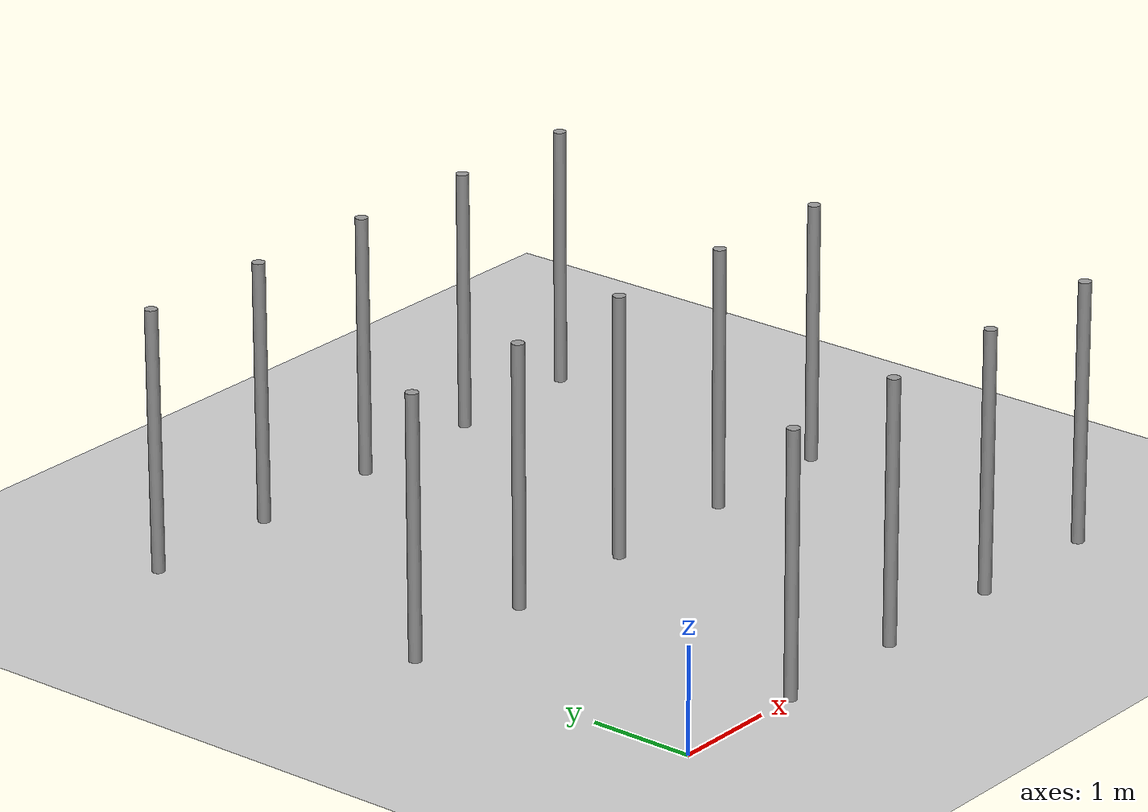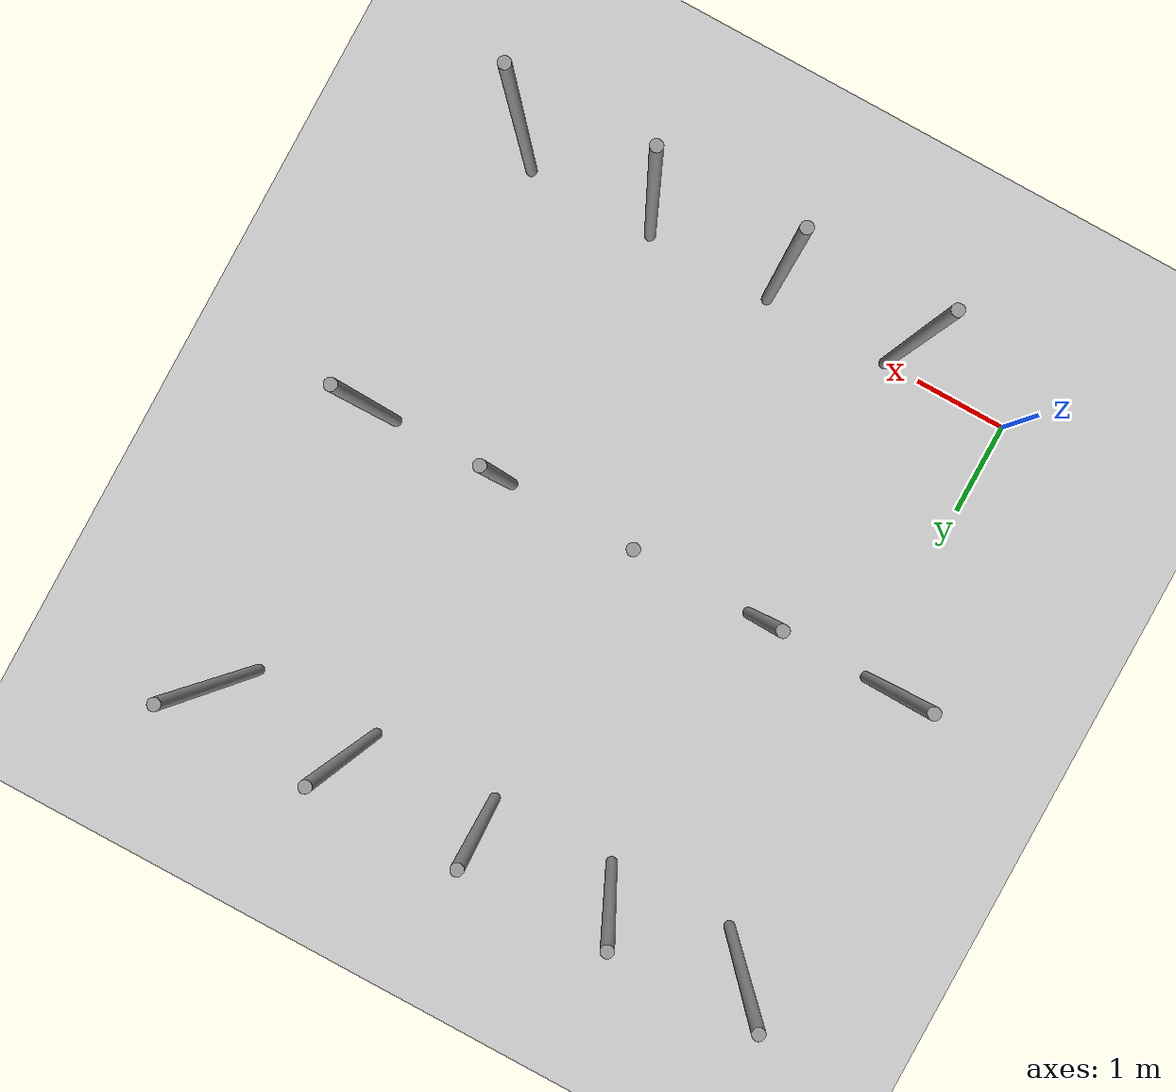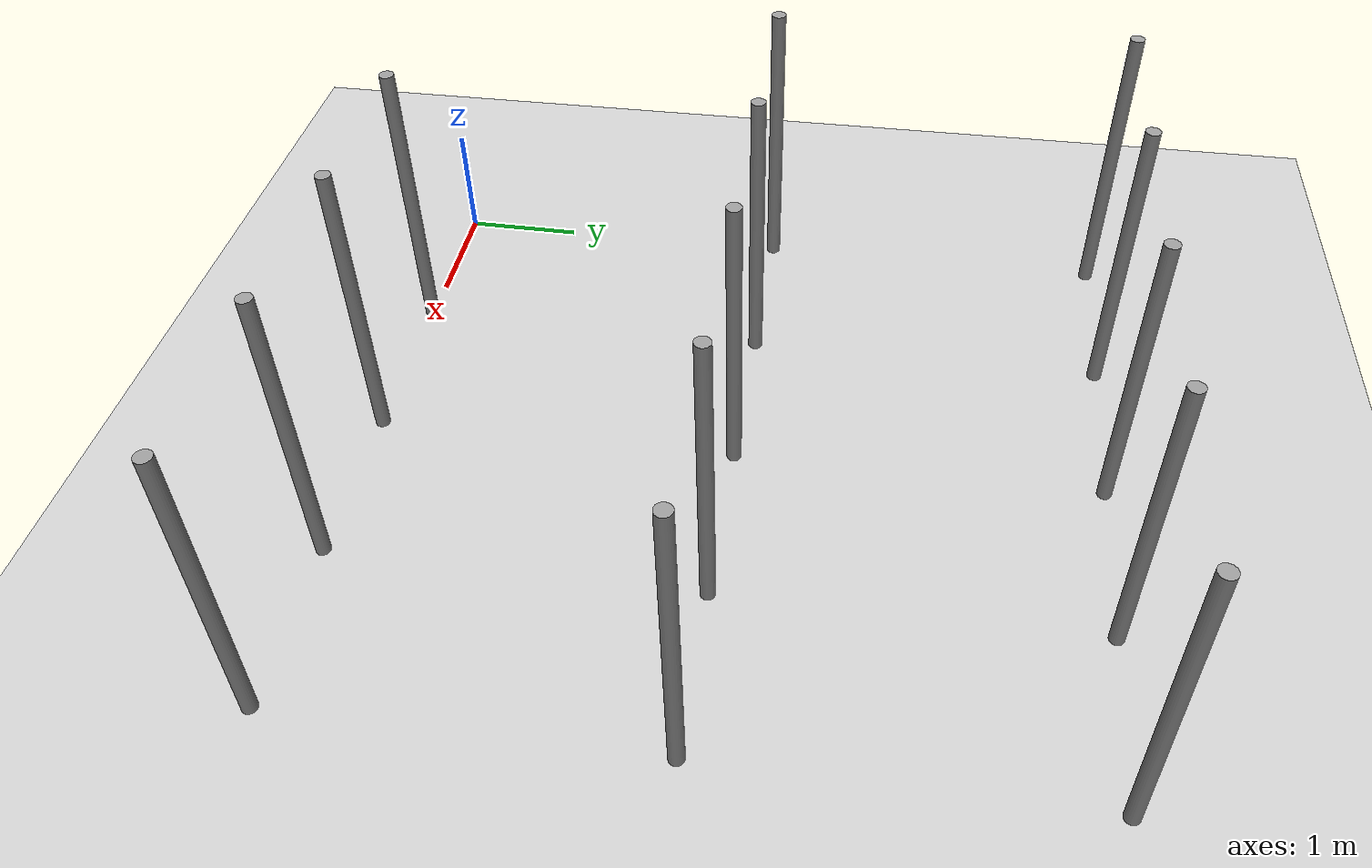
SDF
<sdf version="1.6">
 <world name="default">
  <model name="ground_plane">
   <static>1</static>
   <link name="link">
    <collision name="collision">
     <geometry><plane><normal>0 0 1</normal><size>100 100</size></plane></geometry>
     <surface><friction><ode><mu>100</mu><mu2>50</mu2></ode></friction></surface>
    </collision>
    <visual name="visual">
     <cast_shadows>0</cast_shadows>
     <geometry><plane><normal>0 0 1</normal><size>100 100</size></plane></geometry>
     <material>
      <script><uri>file://media/materials/scripts/gazebo.material</uri><name>Gazebo/Grey</name></script>
     </material>
    </visual>
   </link>
  </model>
  <model name="pole_8">
   <link name="link_0">
    <inertial>
     <mass>0.0364582</mass>
     <inertia>
      <ixx>0.00312124</ixx>
      <ixy>0</ixy>
      <ixz>0</ixz>
      <iyy>0.00312124</iyy>
      <iyz>0</iyz>
      <izz>0.00016615</izz>
     </inertia>
    </inertial>
    <visual name="visual">
     <geometry><cylinder><radius>0.06</radius><length>2.5</length></cylinder></geometry>
     <material>
      <lighting>1</lighting>
      <script><uri>file://media/materials/scripts/gazebo.material</uri><name>Gazebo/Grey</name></script>
      <ambient>0.3 0.3 0.3 1</ambient>
      <diffuse>0.7 0.7 0.7 1</diffuse>
      <specular>0.01 0.01 0.01 1</specular>
      <emissive>0 0 0 1</emissive>
      <shader type="vertex"><normal_map>__default__</normal_map></shader>
     </material>
    </visual>
    <collision name="collision">
     <geometry><cylinder><radius>0.06</radius><length>2.5</length></cylinder></geometry>
     <surface>
      <friction>
       <ode><mu>1</mu><mu2>1</mu2><fdir1>0 0 0</fdir1><slip1>0</slip1><slip2>0</slip2></ode>
       <torsional>
        <coefficient>1</coefficient>
        <patch_radius>0</patch_radius>
        <surface_radius>0</surface_radius>
        <use_patch_radius>1</use_patch_radius>
        <ode><slip>0</slip></ode>
       </torsional>
      </friction>
      <bounce><restitution_coefficient>0</restitution_coefficient><threshold>1e+06</threshold></bounce>
      <contact>
       <collide_without_contact>0</collide_without_contact>
       <collide_without_contact_bitmask>1</collide_without_contact_bitmask>
       <collide_bitmask>1</collide_bitmask>
       <ode>
        <soft_cfm>0</soft_cfm>
        <soft_erp>0.2</soft_erp>
        <kp>1e+13</kp>
        <kd>1</kd>
        <max_vel>0.01</max_vel>
        <min_depth>0</min_depth>
       </ode>
       <bullet>
        <split_impulse>1</split_impulse>
        <split_impulse_penetration_threshold>-0.01</split_impulse_penetration_threshold>
        <soft_cfm>0</soft_cfm>
        <soft_erp>0.2</soft_erp>
        <kp>1e+13</kp>
        <kd>1</kd>
       </bullet>
      </contact>
     </surface>
    </collision>
   </link>
   <static>0</static>
   <pose>1.40417 0.001158 1.24999 0 -1e-06 -0.014934</pose>
  </model>
  <model name="pole_9">
   <link name="link_0">
    <inertial>
     <mass>0.0364582</mass>
     <inertia>
      <ixx>0.00312124</ixx>
      <ixy>0</ixy>
      <ixz>0</ixz>
      <iyy>0.00312124</iyy>
      <iyz>0</iyz>
      <izz>0.00016615</izz>
     </inertia>
    </inertial>
    <visual name="visual">
     <geometry><cylinder><radius>0.06</radius><length>2.5</length></cylinder></geometry>
     <material>
      <lighting>1</lighting>
      <script><uri>file://media/materials/scripts/gazebo.material</uri><name>Gazebo/Grey</name></script>
      <ambient>0.3 0.3 0.3 1</ambient>
      <diffuse>0.7 0.7 0.7 1</diffuse>
      <specular>0.01 0.01 0.01 1</specular>
      <emissive>0 0 0 1</emissive>
      <shader type="vertex"><normal_map>__default__</normal_map></shader>
     </material>
    </visual>
    <collision name="collision">
     <geometry><cylinder><radius>0.06</radius><length>2.5</length></cylinder></geometry>
     <surface>
      <friction>
       <ode><mu>1</mu><mu2>1</mu2><fdir1>0 0 0</fdir1><slip1>0</slip1><slip2>0</slip2></ode>
       <torsional>
        <coefficient>1</coefficient>
        <patch_radius>0</patch_radius>
        <surface_radius>0</surface_radius>
        <use_patch_radius>1</use_patch_radius>
        <ode><slip>0</slip></ode>
       </torsional>
      </friction>
      <bounce><restitution_coefficient>0</restitution_coefficient><threshold>1e+06</threshold></bounce>
      <contact>
       <collide_without_contact>0</collide_without_contact>
       <collide_without_contact_bitmask>1</collide_without_contact_bitmask>
       <collide_bitmask>1</collide_bitmask>
       <ode>
        <soft_cfm>0</soft_cfm>
        <soft_erp>0.2</soft_erp>
        <kp>1e+13</kp>
        <kd>1</kd>
        <max_vel>0.01</max_vel>
        <min_depth>0</min_depth>
       </ode>
       <bullet>
        <split_impulse>1</split_impulse>
        <split_impulse_penetration_threshold>-0.01</split_impulse_penetration_threshold>
        <soft_cfm>0</soft_cfm>
        <soft_erp>0.2</soft_erp>
        <kp>1e+13</kp>
        <kd>1</kd>
       </bullet>
      </contact>
     </surface>
    </collision>
   </link>
   <static>0</static>
   <pose>2.80799 0.00138 1.25 -1e-06 1e-06 -0.03404</pose>
  </model>
  <model name="pole_10">
   <link name="link_0">
    <inertial>
     <mass>0.0364582</mass>
     <inertia>
      <ixx>0.00312124</ixx>
      <ixy>0</ixy>
      <ixz>0</ixz>
      <iyy>0.00312124</iyy>
      <iyz>0</iyz>
      <izz>0.00016615</izz>
     </inertia>
    </inertial>
    <visual name="visual">
     <geometry><cylinder><radius>0.06</radius><length>2.5</length></cylinder></geometry>
     <material>
      <lighting>1</lighting>
      <script><uri>file://media/materials/scripts/gazebo.material</uri><name>Gazebo/Grey</name></script>
      <ambient>0.3 0.3 0.3 1</ambient>
      <diffuse>0.7 0.7 0.7 1</diffuse>
      <specular>0.01 0.01 0.01 1</specular>
      <emissive>0 0 0 1</emissive>
      <shader type="vertex"><normal_map>__default__</normal_map></shader>
     </material>
    </visual>
    <collision name="collision">
     <geometry><cylinder><radius>0.06</radius><length>2.5</length></cylinder></geometry>
     <surface>
      <friction>
       <ode><mu>1</mu><mu2>1</mu2><fdir1>0 0 0</fdir1><slip1>0</slip1><slip2>0</slip2></ode>
       <torsional>
        <coefficient>1</coefficient>
        <patch_radius>0</patch_radius>
        <surface_radius>0</surface_radius>
        <use_patch_radius>1</use_patch_radius>
        <ode><slip>0</slip></ode>
       </torsional>
      </friction>
      <bounce><restitution_coefficient>0</restitution_coefficient><threshold>1e+06</threshold></bounce>
      <contact>
       <collide_without_contact>0</collide_without_contact>
       <collide_without_contact_bitmask>1</collide_without_contact_bitmask>
       <collide_bitmask>1</collide_bitmask>
       <ode>
        <soft_cfm>0</soft_cfm>
        <soft_erp>0.2</soft_erp>
        <kp>1e+13</kp>
        <kd>1</kd>
        <max_vel>0.01</max_vel>
        <min_depth>0</min_depth>
       </ode>
       <bullet>
        <split_impulse>1</split_impulse>
        <split_impulse_penetration_threshold>-0.01</split_impulse_penetration_threshold>
        <soft_cfm>0</soft_cfm>
        <soft_erp>0.2</soft_erp>
        <kp>1e+13</kp>
        <kd>1</kd>
       </bullet>
      </contact>
     </surface>
    </collision>
   </link>
   <static>0</static>
   <pose>4.20392 0.001362 1.24999 0 -1e-06 -0.018205</pose>
  </model>
  <model name="pole_11">
   <link name="link_0">
    <inertial>
     <mass>0.0364582</mass>
     <inertia>
      <ixx>0.00312124</ixx>
      <ixy>0</ixy>
      <ixz>0</ixz>
      <iyy>0.00312124</iyy>
      <iyz>0</iyz>
      <izz>0.00016615</izz>
     </inertia>
    </inertial>
    <visual name="visual">
     <geometry><cylinder><radius>0.06</radius><length>2.5</length></cylinder></geometry>
     <material>
      <lighting>1</lighting>
      <script><uri>file://media/materials/scripts/gazebo.material</uri><name>Gazebo/Grey</name></script>
      <ambient>0.3 0.3 0.3 1</ambient>
      <diffuse>0.7 0.7 0.7 1</diffuse>
      <specular>0.01 0.01 0.01 1</specular>
      <emissive>0 0 0 1</emissive>
      <shader type="vertex"><normal_map>__default__</normal_map></shader>
     </material>
    </visual>
    <collision name="collision">
     <geometry><cylinder><radius>0.06</radius><length>2.5</length></cylinder></geometry>
     <surface>
      <friction>
       <ode><mu>1</mu><mu2>1</mu2><fdir1>0 0 0</fdir1><slip1>0</slip1><slip2>0</slip2></ode>
       <torsional>
        <coefficient>1</coefficient>
        <patch_radius>0</patch_radius>
        <surface_radius>0</surface_radius>
        <use_patch_radius>1</use_patch_radius>
        <ode><slip>0</slip></ode>
       </torsional>
      </friction>
      <bounce><restitution_coefficient>0</restitution_coefficient><threshold>1e+06</threshold></bounce>
      <contact>
       <collide_without_contact>0</collide_without_contact>
       <collide_without_contact_bitmask>1</collide_without_contact_bitmask>
       <collide_bitmask>1</collide_bitmask>
       <ode>
        <soft_cfm>0</soft_cfm>
        <soft_erp>0.2</soft_erp>
        <kp>1e+13</kp>
        <kd>1</kd>
        <max_vel>0.01</max_vel>
        <min_depth>0</min_depth>
       </ode>
       <bullet>
        <split_impulse>1</split_impulse>
        <split_impulse_penetration_threshold>-0.01</split_impulse_penetration_threshold>
        <soft_cfm>0</soft_cfm>
        <soft_erp>0.2</soft_erp>
        <kp>1e+13</kp>
        <kd>1</kd>
       </bullet>
      </contact>
     </surface>
    </collision>
   </link>
   <static>0</static>
   <pose>5.61619 0.001058 1.24999 -1e-06 -0 -0.017337</pose>
  </model>
  <model name="pole_11_clone">
   <link name="link_0">
    <inertial>
     <mass>0.0364582</mass>
     <inertia>
      <ixx>0.00312124</ixx>
      <ixy>0</ixy>
      <ixz>0</ixz>
      <iyy>0.00312124</iyy>
      <iyz>0</iyz>
      <izz>0.00016615</izz>
     </inertia>
    </inertial>
    <visual name="visual">
     <geometry><cylinder><radius>0.06</radius><length>2.5</length></cylinder></geometry>
     <material>
      <lighting>1</lighting>
      <script><uri>file://media/materials/scripts/gazebo.material</uri><name>Gazebo/Grey</name></script>
      <ambient>0.3 0.3 0.3 1</ambient>
      <diffuse>0.7 0.7 0.7 1</diffuse>
      <specular>0.01 0.01 0.01 1</specular>
      <emissive>0 0 0 1</emissive>
      <shader type="vertex"><normal_map>__default__</normal_map></shader>
     </material>
    </visual>
    <collision name="collision">
     <geometry><cylinder><radius>0.06</radius><length>2.5</length></cylinder></geometry>
     <surface>
      <friction>
       <ode><mu>1</mu><mu2>1</mu2><fdir1>0 0 0</fdir1><slip1>0</slip1><slip2>0</slip2></ode>
       <torsional>
        <coefficient>1</coefficient>
        <patch_radius>0</patch_radius>
        <surface_radius>0</surface_radius>
        <use_patch_radius>1</use_patch_radius>
        <ode><slip>0</slip></ode>
       </torsional>
      </friction>
      <bounce><restitution_coefficient>0</restitution_coefficient><threshold>1e+06</threshold></bounce>
      <contact>
       <collide_without_contact>0</collide_without_contact>
       <collide_without_contact_bitmask>1</collide_without_contact_bitmask>
       <collide_bitmask>1</collide_bitmask>
       <ode>
        <soft_cfm>0</soft_cfm>
        <soft_erp>0.2</soft_erp>
        <kp>1e+13</kp>
        <kd>1</kd>
        <max_vel>0.01</max_vel>
        <min_depth>0</min_depth>
       </ode>
       <bullet>
        <split_impulse>1</split_impulse>
        <split_impulse_penetration_threshold>-0.01</split_impulse_penetration_threshold>
        <soft_cfm>0</soft_cfm>
        <soft_erp>0.2</soft_erp>
        <kp>1e+13</kp>
        <kd>1</kd>
       </bullet>
      </contact>
     </surface>
    </collision>
   </link>
   <static>0</static>
   <pose>0.000206 2.98131 1.25 -1e-06 -1e-06 -0.017457</pose>
  </model>
  <model name="pole">
   <link name="link_0">
    <inertial>
     <mass>0.0364582</mass>
     <inertia>
      <ixx>0.00312124</ixx>
      <ixy>0</ixy>
      <ixz>0</ixz>
      <iyy>0.00312124</iyy>
      <iyz>0</iyz>
      <izz>0.00016615</izz>
     </inertia>
    </inertial>
    <visual name="visual">
     <geometry><cylinder><radius>0.06</radius><length>2.5</length></cylinder></geometry>
     <material>
      <lighting>1</lighting>
      <script><uri>file://media/materials/scripts/gazebo.material</uri><name>Gazebo/Grey</name></script>
      <ambient>0.3 0.3 0.3 1</ambient>
      <diffuse>0.7 0.7 0.7 1</diffuse>
      <specular>0.01 0.01 0.01 1</specular>
      <emissive>0 0 0 1</emissive>
      <shader type="vertex"><normal_map>__default__</normal_map></shader>
     </material>
    </visual>
    <collision name="collision">
     <geometry><cylinder><radius>0.06</radius><length>2.5</length></cylinder></geometry>
     <surface>
      <friction>
       <ode><mu>1</mu><mu2>1</mu2><fdir1>0 0 0</fdir1><slip1>0</slip1><slip2>0</slip2></ode>
       <torsional>
        <coefficient>1</coefficient>
        <patch_radius>0</patch_radius>
        <surface_radius>0</surface_radius>
        <use_patch_radius>1</use_patch_radius>
        <ode><slip>0</slip></ode>
       </torsional>
      </friction>
      <bounce><restitution_coefficient>0</restitution_coefficient><threshold>1e+06</threshold></bounce>
      <contact>
       <collide_without_contact>0</collide_without_contact>
       <collide_without_contact_bitmask>1</collide_without_contact_bitmask>
       <collide_bitmask>1</collide_bitmask>
       <ode>
        <soft_cfm>0</soft_cfm>
        <soft_erp>0.2</soft_erp>
        <kp>1e+13</kp>
        <kd>1</kd>
        <max_vel>0.01</max_vel>
        <min_depth>0</min_depth>
       </ode>
       <bullet>
        <split_impulse>1</split_impulse>
        <split_impulse_penetration_threshold>-0.01</split_impulse_penetration_threshold>
        <soft_cfm>0</soft_cfm>
        <soft_erp>0.2</soft_erp>
        <kp>1e+13</kp>
        <kd>1</kd>
       </bullet>
      </contact>
     </surface>
    </collision>
   </link>
   <static>0</static>
   <pose>0.006658 5.96097 1.25 -1e-06 -1e-06 -0.012645</pose>
  </model>
  <model name="pole_3">
   <link name="link_0">
    <inertial>
     <mass>0.0364582</mass>
     <inertia>
      <ixx>0.00312124</ixx>
      <ixy>0</ixy>
      <ixz>0</ixz>
      <iyy>0.00312124</iyy>
      <iyz>0</iyz>
      <izz>0.00016615</izz>
     </inertia>
    </inertial>
    <visual name="visual">
     <geometry><cylinder><radius>0.06</radius><length>2.5</length></cylinder></geometry>
     <material>
      <lighting>1</lighting>
      <script><uri>file://media/materials/scripts/gazebo.material</uri><name>Gazebo/Grey</name></script>
      <ambient>0.3 0.3 0.3 1</ambient>
      <diffuse>0.7 0.7 0.7 1</diffuse>
      <specular>0.01 0.01 0.01 1</specular>
      <emissive>0 0 0 1</emissive>
      <shader type="vertex"><normal_map>__default__</normal_map></shader>
     </material>
    </visual>
    <collision name="collision">
     <geometry><cylinder><radius>0.06</radius><length>2.5</length></cylinder></geometry>
     <surface>
      <friction>
       <ode><mu>1</mu><mu2>1</mu2><fdir1>0 0 0</fdir1><slip1>0</slip1><slip2>0</slip2></ode>
       <torsional>
        <coefficient>1</coefficient>
        <patch_radius>0</patch_radius>
        <surface_radius>0</surface_radius>
        <use_patch_radius>1</use_patch_radius>
        <ode><slip>0</slip></ode>
       </torsional>
      </friction>
      <bounce><restitution_coefficient>0</restitution_coefficient><threshold>1e+06</threshold></bounce>
      <contact>
       <collide_without_contact>0</collide_without_contact>
       <collide_without_contact_bitmask>1</collide_without_contact_bitmask>
       <collide_bitmask>1</collide_bitmask>
       <ode>
        <soft_cfm>0</soft_cfm>
        <soft_erp>0.2</soft_erp>
        <kp>1e+13</kp>
        <kd>1</kd>
        <max_vel>0.01</max_vel>
        <min_depth>0</min_depth>
       </ode>
       <bullet>
        <split_impulse>1</split_impulse>
        <split_impulse_penetration_threshold>-0.01</split_impulse_penetration_threshold>
        <soft_cfm>0</soft_cfm>
        <soft_erp>0.2</soft_erp>
        <kp>1e+13</kp>
        <kd>1</kd>
       </bullet>
      </contact>
     </surface>
    </collision>
   </link>
   <static>0</static>
   <pose>1.40469 2.98089 1.25 0 1e-06 -0.011236</pose>
  </model>
  <model name="pole_5">
   <link name="link_0">
    <inertial>
     <mass>0.0364582</mass>
     <inertia>
      <ixx>0.00312124</ixx>
      <ixy>0</ixy>
      <ixz>0</ixz>
      <iyy>0.00312124</iyy>
      <iyz>0</iyz>
      <izz>0.00016615</izz>
     </inertia>
    </inertial>
    <visual name="visual">
     <geometry><cylinder><radius>0.06</radius><length>2.5</length></cylinder></geometry>
     <material>
      <lighting>1</lighting>
      <script><uri>file://media/materials/scripts/gazebo.material</uri><name>Gazebo/Grey</name></script>
      <ambient>0.3 0.3 0.3 1</ambient>
      <diffuse>0.7 0.7 0.7 1</diffuse>
      <specular>0.01 0.01 0.01 1</specular>
      <emissive>0 0 0 1</emissive>
      <shader type="vertex"><normal_map>__default__</normal_map></shader>
     </material>
    </visual>
    <collision name="collision">
     <geometry><cylinder><radius>0.06</radius><length>2.5</length></cylinder></geometry>
     <surface>
      <friction>
       <ode><mu>1</mu><mu2>1</mu2><fdir1>0 0 0</fdir1><slip1>0</slip1><slip2>0</slip2></ode>
       <torsional>
        <coefficient>1</coefficient>
        <patch_radius>0</patch_radius>
        <surface_radius>0</surface_radius>
        <use_patch_radius>1</use_patch_radius>
        <ode><slip>0</slip></ode>
       </torsional>
      </friction>
      <bounce><restitution_coefficient>0</restitution_coefficient><threshold>1e+06</threshold></bounce>
      <contact>
       <collide_without_contact>0</collide_without_contact>
       <collide_without_contact_bitmask>1</collide_without_contact_bitmask>
       <collide_bitmask>1</collide_bitmask>
       <ode>
        <soft_cfm>0</soft_cfm>
        <soft_erp>0.2</soft_erp>
        <kp>1e+13</kp>
        <kd>1</kd>
        <max_vel>0.01</max_vel>
        <min_depth>0</min_depth>
       </ode>
       <bullet>
        <split_impulse>1</split_impulse>
        <split_impulse_penetration_threshold>-0.01</split_impulse_penetration_threshold>
        <soft_cfm>0</soft_cfm>
        <soft_erp>0.2</soft_erp>
        <kp>1e+13</kp>
        <kd>1</kd>
       </bullet>
      </contact>
     </surface>
    </collision>
   </link>
   <static>0</static>
   <pose>2.79577 2.98081 1.25 0 -3e-06 -0.010486</pose>
  </model>
  <model name="pole_6">
   <link name="link_0">
    <inertial>
     <mass>0.0364582</mass>
     <inertia>
      <ixx>0.00312124</ixx>
      <ixy>0</ixy>
      <ixz>0</ixz>
      <iyy>0.00312124</iyy>
      <iyz>0</iyz>
      <izz>0.00016615</izz>
     </inertia>
    </inertial>
    <visual name="visual">
     <geometry><cylinder><radius>0.06</radius><length>2.5</length></cylinder></geometry>
     <material>
      <lighting>1</lighting>
      <script><uri>file://media/materials/scripts/gazebo.material</uri><name>Gazebo/Grey</name></script>
      <ambient>0.3 0.3 0.3 1</ambient>
      <diffuse>0.7 0.7 0.7 1</diffuse>
      <specular>0.01 0.01 0.01 1</specular>
      <emissive>0 0 0 1</emissive>
      <shader type="vertex"><normal_map>__default__</normal_map></shader>
     </material>
    </visual>
    <collision name="collision">
     <geometry><cylinder><radius>0.06</radius><length>2.5</length></cylinder></geometry>
     <surface>
      <friction>
       <ode><mu>1</mu><mu2>1</mu2><fdir1>0 0 0</fdir1><slip1>0</slip1><slip2>0</slip2></ode>
       <torsional>
        <coefficient>1</coefficient>
        <patch_radius>0</patch_radius>
        <surface_radius>0</surface_radius>
        <use_patch_radius>1</use_patch_radius>
        <ode><slip>0</slip></ode>
       </torsional>
      </friction>
      <bounce><restitution_coefficient>0</restitution_coefficient><threshold>1e+06</threshold></bounce>
      <contact>
       <collide_without_contact>0</collide_without_contact>
       <collide_without_contact_bitmask>1</collide_without_contact_bitmask>
       <collide_bitmask>1</collide_bitmask>
       <ode>
        <soft_cfm>0</soft_cfm>
        <soft_erp>0.2</soft_erp>
        <kp>1e+13</kp>
        <kd>1</kd>
        <max_vel>0.01</max_vel>
        <min_depth>0</min_depth>
       </ode>
       <bullet>
        <split_impulse>1</split_impulse>
        <split_impulse_penetration_threshold>-0.01</split_impulse_penetration_threshold>
        <soft_cfm>0</soft_cfm>
        <soft_erp>0.2</soft_erp>
        <kp>1e+13</kp>
        <kd>1</kd>
       </bullet>
      </contact>
     </surface>
    </collision>
   </link>
   <static>0</static>
   <pose>4.22236 2.98092 1.24999 0 1e-06 -0.009921</pose>
  </model>
  <model name="pole_7">
   <link name="link_0">
    <inertial>
     <mass>0.0364582</mass>
     <inertia>
      <ixx>0.00312124</ixx>
      <ixy>0</ixy>
      <ixz>0</ixz>
      <iyy>0.00312124</iyy>
      <iyz>0</iyz>
      <izz>0.00016615</izz>
     </inertia>
    </inertial>
    <visual name="visual">
     <geometry><cylinder><radius>0.06</radius><length>2.5</length></cylinder></geometry>
     <material>
      <lighting>1</lighting>
      <script><uri>file://media/materials/scripts/gazebo.material</uri><name>Gazebo/Grey</name></script>
      <ambient>0.3 0.3 0.3 1</ambient>
      <diffuse>0.7 0.7 0.7 1</diffuse>
      <specular>0.01 0.01 0.01 1</specular>
      <emissive>0 0 0 1</emissive>
      <shader type="vertex"><normal_map>__default__</normal_map></shader>
     </material>
    </visual>
    <collision name="collision">
     <geometry><cylinder><radius>0.06</radius><length>2.5</length></cylinder></geometry>
     <surface>
      <friction>
       <ode><mu>1</mu><mu2>1</mu2><fdir1>0 0 0</fdir1><slip1>0</slip1><slip2>0</slip2></ode>
       <torsional>
        <coefficient>1</coefficient>
        <patch_radius>0</patch_radius>
        <surface_radius>0</surface_radius>
        <use_patch_radius>1</use_patch_radius>
        <ode><slip>0</slip></ode>
       </torsional>
      </friction>
      <bounce><restitution_coefficient>0</restitution_coefficient><threshold>1e+06</threshold></bounce>
      <contact>
       <collide_without_contact>0</collide_without_contact>
       <collide_without_contact_bitmask>1</collide_without_contact_bitmask>
       <collide_bitmask>1</collide_bitmask>
       <ode>
        <soft_cfm>0</soft_cfm>
        <soft_erp>0.2</soft_erp>
        <kp>1e+13</kp>
        <kd>1</kd>
        <max_vel>0.01</max_vel>
        <min_depth>0</min_depth>
       </ode>
       <bullet>
        <split_impulse>1</split_impulse>
        <split_impulse_penetration_threshold>-0.01</split_impulse_penetration_threshold>
        <soft_cfm>0</soft_cfm>
        <soft_erp>0.2</soft_erp>
        <kp>1e+13</kp>
        <kd>1</kd>
       </bullet>
      </contact>
     </surface>
    </collision>
   </link>
   <static>0</static>
   <pose>5.60729 2.98095 1.25 -1e-06 1e-06 -0.009524</pose>
  </model>
  <model name="pole_12">
   <link name="link_0">
    <inertial>
     <mass>0.0364582</mass>
     <inertia>
      <ixx>0.00312124</ixx>
      <ixy>0</ixy>
      <ixz>0</ixz>
      <iyy>0.00312124</iyy>
      <iyz>0</iyz>
      <izz>0.00016615</izz>
     </inertia>
    </inertial>
    <visual name="visual">
     <geometry><cylinder><radius>0.06</radius><length>2.5</length></cylinder></geometry>
     <material>
      <lighting>1</lighting>
      <script><uri>file://media/materials/scripts/gazebo.material</uri><name>Gazebo/Grey</name></script>
      <ambient>0.3 0.3 0.3 1</ambient>
      <diffuse>0.7 0.7 0.7 1</diffuse>
      <specular>0.01 0.01 0.01 1</specular>
      <emissive>0 0 0 1</emissive>
      <shader type="vertex"><normal_map>__default__</normal_map></shader>
     </material>
    </visual>
    <collision name="collision">
     <geometry><cylinder><radius>0.06</radius><length>2.5</length></cylinder></geometry>
     <surface>
      <friction>
       <ode><mu>1</mu><mu2>1</mu2><fdir1>0 0 0</fdir1><slip1>0</slip1><slip2>0</slip2></ode>
       <torsional>
        <coefficient>1</coefficient>
        <patch_radius>0</patch_radius>
        <surface_radius>0</surface_radius>
        <use_patch_radius>1</use_patch_radius>
        <ode><slip>0</slip></ode>
       </torsional>
      </friction>
      <bounce><restitution_coefficient>0</restitution_coefficient><threshold>1e+06</threshold></bounce>
      <contact>
       <collide_without_contact>0</collide_without_contact>
       <collide_without_contact_bitmask>1</collide_without_contact_bitmask>
       <collide_bitmask>1</collide_bitmask>
       <ode>
        <soft_cfm>0</soft_cfm>
        <soft_erp>0.2</soft_erp>
        <kp>1e+13</kp>
        <kd>1</kd>
        <max_vel>0.01</max_vel>
        <min_depth>0</min_depth>
       </ode>
       <bullet>
        <split_impulse>1</split_impulse>
        <split_impulse_penetration_threshold>-0.01</split_impulse_penetration_threshold>
        <soft_cfm>0</soft_cfm>
        <soft_erp>0.2</soft_erp>
        <kp>1e+13</kp>
        <kd>1</kd>
       </bullet>
      </contact>
     </surface>
    </collision>
   </link>
   <static>0</static>
   <pose>1.41356 5.9608 1.24999 -1e-06 1e-06 -0.007982</pose>
  </model>
  <model name="pole_13">
   <link name="link_0">
    <inertial>
     <mass>0.0364582</mass>
     <inertia>
      <ixx>0.00312124</ixx>
      <ixy>0</ixy>
      <ixz>0</ixz>
      <iyy>0.00312124</iyy>
      <iyz>0</iyz>
      <izz>0.00016615</izz>
     </inertia>
    </inertial>
    <visual name="visual">
     <geometry><cylinder><radius>0.06</radius><length>2.5</length></cylinder></geometry>
     <material>
      <lighting>1</lighting>
      <script><uri>file://media/materials/scripts/gazebo.material</uri><name>Gazebo/Grey</name></script>
      <ambient>0.3 0.3 0.3 1</ambient>
      <diffuse>0.7 0.7 0.7 1</diffuse>
      <specular>0.01 0.01 0.01 1</specular>
      <emissive>0 0 0 1</emissive>
      <shader type="vertex"><normal_map>__default__</normal_map></shader>
     </material>
    </visual>
    <collision name="collision">
     <geometry><cylinder><radius>0.06</radius><length>2.5</length></cylinder></geometry>
     <surface>
      <friction>
       <ode><mu>1</mu><mu2>1</mu2><fdir1>0 0 0</fdir1><slip1>0</slip1><slip2>0</slip2></ode>
       <torsional>
        <coefficient>1</coefficient>
        <patch_radius>0</patch_radius>
        <surface_radius>0</surface_radius>
        <use_patch_radius>1</use_patch_radius>
        <ode><slip>0</slip></ode>
       </torsional>
      </friction>
      <bounce><restitution_coefficient>0</restitution_coefficient><threshold>1e+06</threshold></bounce>
      <contact>
       <collide_without_contact>0</collide_without_contact>
       <collide_without_contact_bitmask>1</collide_without_contact_bitmask>
       <collide_bitmask>1</collide_bitmask>
       <ode>
        <soft_cfm>0</soft_cfm>
        <soft_erp>0.2</soft_erp>
        <kp>1e+13</kp>
        <kd>1</kd>
        <max_vel>0.01</max_vel>
        <min_depth>0</min_depth>
       </ode>
       <bullet>
        <split_impulse>1</split_impulse>
        <split_impulse_penetration_threshold>-0.01</split_impulse_penetration_threshold>
        <soft_cfm>0</soft_cfm>
        <soft_erp>0.2</soft_erp>
        <kp>1e+13</kp>
        <kd>1</kd>
       </bullet>
      </contact>
     </surface>
    </collision>
   </link>
   <static>0</static>
   <pose>2.80797 5.9608 1.25 -1e-06 1e-06 -0.008057</pose>
  </model>
  <model name="pole_14">
   <link name="link_0">
    <inertial>
     <mass>0.0364582</mass>
     <inertia>
      <ixx>0.00312124</ixx>
      <ixy>0</ixy>
      <ixz>0</ixz>
      <iyy>0.00312124</iyy>
      <iyz>0</iyz>
      <izz>0.00016615</izz>
     </inertia>
    </inertial>
    <visual name="visual">
     <geometry><cylinder><radius>0.06</radius><length>2.5</length></cylinder></geometry>
     <material>
      <lighting>1</lighting>
      <script><uri>file://media/materials/scripts/gazebo.material</uri><name>Gazebo/Grey</name></script>
      <ambient>0.3 0.3 0.3 1</ambient>
      <diffuse>0.7 0.7 0.7 1</diffuse>
      <specular>0.01 0.01 0.01 1</specular>
      <emissive>0 0 0 1</emissive>
      <shader type="vertex"><normal_map>__default__</normal_map></shader>
     </material>
    </visual>
    <collision name="collision">
     <geometry><cylinder><radius>0.06</radius><length>2.5</length></cylinder></geometry>
     <surface>
      <friction>
       <ode><mu>1</mu><mu2>1</mu2><fdir1>0 0 0</fdir1><slip1>0</slip1><slip2>0</slip2></ode>
       <torsional>
        <coefficient>1</coefficient>
        <patch_radius>0</patch_radius>
        <surface_radius>0</surface_radius>
        <use_patch_radius>1</use_patch_radius>
        <ode><slip>0</slip></ode>
       </torsional>
      </friction>
      <bounce><restitution_coefficient>0</restitution_coefficient><threshold>1e+06</threshold></bounce>
      <contact>
       <collide_without_contact>0</collide_without_contact>
       <collide_without_contact_bitmask>1</collide_without_contact_bitmask>
       <collide_bitmask>1</collide_bitmask>
       <ode>
        <soft_cfm>0</soft_cfm>
        <soft_erp>0.2</soft_erp>
        <kp>1e+13</kp>
        <kd>1</kd>
        <max_vel>0.01</max_vel>
        <min_depth>0</min_depth>
       </ode>
       <bullet>
        <split_impulse>1</split_impulse>
        <split_impulse_penetration_threshold>-0.01</split_impulse_penetration_threshold>
        <soft_cfm>0</soft_cfm>
        <soft_erp>0.2</soft_erp>
        <kp>1e+13</kp>
        <kd>1</kd>
       </bullet>
      </contact>
     </surface>
    </collision>
   </link>
   <static>0</static>
   <pose>4.21947 5.96079 1.24999 -1e-06 1e-06 -0.007245</pose>
  </model>
  <model name="pole_15">
   <link name="link_0">
    <inertial>
     <mass>0.0364582</mass>
     <inertia>
      <ixx>0.00312124</ixx>
      <ixy>0</ixy>
      <ixz>0</ixz>
      <iyy>0.00312124</iyy>
      <iyz>0</iyz>
      <izz>0.00016615</izz>
     </inertia>
    </inertial>
    <visual name="visual">
     <geometry><cylinder><radius>0.06</radius><length>2.5</length></cylinder></geometry>
     <material>
      <lighting>1</lighting>
      <script><uri>file://media/materials/scripts/gazebo.material</uri><name>Gazebo/Grey</name></script>
      <ambient>0.3 0.3 0.3 1</ambient>
      <diffuse>0.7 0.7 0.7 1</diffuse>
      <specular>0.01 0.01 0.01 1</specular>
      <emissive>0 0 0 1</emissive>
      <shader type="vertex"><normal_map>__default__</normal_map></shader>
     </material>
    </visual>
    <collision name="collision">
     <geometry><cylinder><radius>0.06</radius><length>2.5</length></cylinder></geometry>
     <surface>
      <friction>
       <ode><mu>1</mu><mu2>1</mu2><fdir1>0 0 0</fdir1><slip1>0</slip1><slip2>0</slip2></ode>
       <torsional>
        <coefficient>1</coefficient>
        <patch_radius>0</patch_radius>
        <surface_radius>0</surface_radius>
        <use_patch_radius>1</use_patch_radius>
        <ode><slip>0</slip></ode>
       </torsional>
      </friction>
      <bounce><restitution_coefficient>0</restitution_coefficient><threshold>1e+06</threshold></bounce>
      <contact>
       <collide_without_contact>0</collide_without_contact>
       <collide_without_contact_bitmask>1</collide_without_contact_bitmask>
       <collide_bitmask>1</collide_bitmask>
       <ode>
        <soft_cfm>0</soft_cfm>
        <soft_erp>0.2</soft_erp>
        <kp>1e+13</kp>
        <kd>1</kd>
        <max_vel>0.01</max_vel>
        <min_depth>0</min_depth>
       </ode>
       <bullet>
        <split_impulse>1</split_impulse>
        <split_impulse_penetration_threshold>-0.01</split_impulse_penetration_threshold>
        <soft_cfm>0</soft_cfm>
        <soft_erp>0.2</soft_erp>
        <kp>1e+13</kp>
        <kd>1</kd>
       </bullet>
      </contact>
     </surface>
    </collision>
   </link>
   <static>0</static>
   <pose>5.62347 5.96081 1.24999 -1e-06 -2e-06 -0.007898</pose>
  </model>
 </world>
</sdf>
